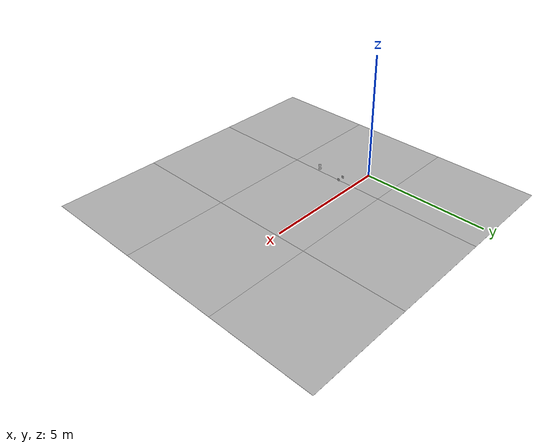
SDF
<sdf version='1.6'><world name='default'>
    <light name='sun_light' type='directional'>
      <pose frame=''>0 0 10 0 -0 0</pose>
      <diffuse>0.5 0.5 0.5 1</diffuse>
      <specular>0.1 0.1 0.1 1</specular>
      <direction>0.1 0.1 -0.9</direction>
      <attenuation>
        <range>20</range>
        <constant>0.5</constant>
        <linear>0.01</linear>
        <quadratic>0.001</quadratic>
      </attenuation>
      <cast_shadows>1</cast_shadows>
    </light>

    <model name='Tile/0-0'>
      <static>1</static>
      <link name='link'>
        <collision name='collision'>
          <geometry>
            <plane>
              <normal>0 0 1</normal>
              <size>4.096 4.096</size>
            </plane>
          </geometry>
          <surface>
            <friction>
              <ode>
                <mu>100</mu>
                <mu2>50</mu2>
              </ode>
              <torsional>
                <ode/>
              </torsional>
            </friction>
            <contact>
              <ode/>
            </contact>
            <bounce/>
          </surface>
          <max_contacts>10</max_contacts>
        </collision>
        <visual name='visual'>
          <cast_shadows>0</cast_shadows>
          <geometry>
            <plane>
              <normal>0 0 1</normal>
              <size>4.096 4.096</size>
            </plane>
          </geometry>
          <material>
            <script>
              <uri>file://materials/scripts</uri>
              <uri>file://materials/textures</uri>
              <name>Tile/be6dc0a821c95bc31620aecd96f3677c677a5320fa00c514214f92d96d260283</name>
            </script>
          </material>
        </visual>
        <self_collide>0</self_collide>
        <enable_wind>0</enable_wind>
        <kinematic>0</kinematic>
      </link>
      <pose frame=''>-1.0176854249492382 -4.924750183902104 0 0 -0 0</pose>
    </model>

    <model name='Tile/0-1'>
      <static>1</static>
      <link name='link'>
        <collision name='collision'>
          <geometry>
            <plane>
              <normal>0 0 1</normal>
              <size>4.096 4.096</size>
            </plane>
          </geometry>
          <surface>
            <friction>
              <ode>
                <mu>100</mu>
                <mu2>50</mu2>
              </ode>
              <torsional>
                <ode/>
              </torsional>
            </friction>
            <contact>
              <ode/>
            </contact>
            <bounce/>
          </surface>
          <max_contacts>10</max_contacts>
        </collision>
        <visual name='visual'>
          <cast_shadows>0</cast_shadows>
          <geometry>
            <plane>
              <normal>0 0 1</normal>
              <size>4.096 4.096</size>
            </plane>
          </geometry>
          <material>
            <script>
              <uri>file://materials/scripts</uri>
              <uri>file://materials/textures</uri>
              <name>Tile/fff816b9a3f4781e073f4641bb45676a35f76713a00fb26ff5c04b18a6f9a32e</name>
            </script>
          </material>
        </visual>
        <self_collide>0</self_collide>
        <enable_wind>0</enable_wind>
        <kinematic>0</kinematic>
      </link>
      <pose frame=''>-1.0176854249492382 -0.8287501839021036 0 0 -0 0</pose>
    </model>

    <model name='Tile/0-2'>
      <static>1</static>
      <link name='link'>
        <collision name='collision'>
          <geometry>
            <plane>
              <normal>0 0 1</normal>
              <size>4.096 4.096</size>
            </plane>
          </geometry>
          <surface>
            <friction>
              <ode>
                <mu>100</mu>
                <mu2>50</mu2>
              </ode>
              <torsional>
                <ode/>
              </torsional>
            </friction>
            <contact>
              <ode/>
            </contact>
            <bounce/>
          </surface>
          <max_contacts>10</max_contacts>
        </collision>
        <visual name='visual'>
          <cast_shadows>0</cast_shadows>
          <geometry>
            <plane>
              <normal>0 0 1</normal>
              <size>4.096 4.096</size>
            </plane>
          </geometry>
          <material>
            <script>
              <uri>file://materials/scripts</uri>
              <uri>file://materials/textures</uri>
              <name>Tile/5eab350b8220ac9944dbdfa4ac3288c7c17e24c3bf5df0dfcf6173d64dae00a1</name>
            </script>
          </material>
        </visual>
        <self_collide>0</self_collide>
        <enable_wind>0</enable_wind>
        <kinematic>0</kinematic>
      </link>
      <pose frame=''>-1.0176854249492382 3.2672498160978964 0 0 -0 0</pose>
    </model>

    <model name='Tile/1-0'>
      <static>1</static>
      <link name='link'>
        <collision name='collision'>
          <geometry>
            <plane>
              <normal>0 0 1</normal>
              <size>4.096 4.096</size>
            </plane>
          </geometry>
          <surface>
            <friction>
              <ode>
                <mu>100</mu>
                <mu2>50</mu2>
              </ode>
              <torsional>
                <ode/>
              </torsional>
            </friction>
            <contact>
              <ode/>
            </contact>
            <bounce/>
          </surface>
          <max_contacts>10</max_contacts>
        </collision>
        <visual name='visual'>
          <cast_shadows>0</cast_shadows>
          <geometry>
            <plane>
              <normal>0 0 1</normal>
              <size>4.096 4.096</size>
            </plane>
          </geometry>
          <material>
            <script>
              <uri>file://materials/scripts</uri>
              <uri>file://materials/textures</uri>
              <name>Tile/d1f8dc7bb2c23ad7effa0ec2445359d1d21ec617469079331b1877aadc51befb</name>
            </script>
          </material>
        </visual>
        <self_collide>0</self_collide>
        <enable_wind>0</enable_wind>
        <kinematic>0</kinematic>
      </link>
      <pose frame=''>3.078314575050762 -4.924750183902104 0 0 -0 0</pose>
    </model>

    <model name='Tile/1-1'>
      <static>1</static>
      <link name='link'>
        <collision name='collision'>
          <geometry>
            <plane>
              <normal>0 0 1</normal>
              <size>4.096 4.096</size>
            </plane>
          </geometry>
          <surface>
            <friction>
              <ode>
                <mu>100</mu>
                <mu2>50</mu2>
              </ode>
              <torsional>
                <ode/>
              </torsional>
            </friction>
            <contact>
              <ode/>
            </contact>
            <bounce/>
          </surface>
          <max_contacts>10</max_contacts>
        </collision>
        <visual name='visual'>
          <cast_shadows>0</cast_shadows>
          <geometry>
            <plane>
              <normal>0 0 1</normal>
              <size>4.096 4.096</size>
            </plane>
          </geometry>
          <material>
            <script>
              <uri>file://materials/scripts</uri>
              <uri>file://materials/textures</uri>
              <name>Tile/47f687dcbce892f3b75af2f36f665fa62023f284b6726d3470230a86d500e8c9</name>
            </script>
          </material>
        </visual>
        <self_collide>0</self_collide>
        <enable_wind>0</enable_wind>
        <kinematic>0</kinematic>
      </link>
      <pose frame=''>3.078314575050762 -0.8287501839021036 0 0 -0 0</pose>
    </model>

    <model name='Tile/1-2'>
      <static>1</static>
      <link name='link'>
        <collision name='collision'>
          <geometry>
            <plane>
              <normal>0 0 1</normal>
              <size>4.096 4.096</size>
            </plane>
          </geometry>
          <surface>
            <friction>
              <ode>
                <mu>100</mu>
                <mu2>50</mu2>
              </ode>
              <torsional>
                <ode/>
              </torsional>
            </friction>
            <contact>
              <ode/>
            </contact>
            <bounce/>
          </surface>
          <max_contacts>10</max_contacts>
        </collision>
        <visual name='visual'>
          <cast_shadows>0</cast_shadows>
          <geometry>
            <plane>
              <normal>0 0 1</normal>
              <size>4.096 4.096</size>
            </plane>
          </geometry>
          <material>
            <script>
              <uri>file://materials/scripts</uri>
              <uri>file://materials/textures</uri>
              <name>Tile/5eab350b8220ac9944dbdfa4ac3288c7c17e24c3bf5df0dfcf6173d64dae00a1</name>
            </script>
          </material>
        </visual>
        <self_collide>0</self_collide>
        <enable_wind>0</enable_wind>
        <kinematic>0</kinematic>
      </link>
      <pose frame=''>3.078314575050762 3.2672498160978964 0 0 -0 0</pose>
    </model>

    <model name='Tile/2-0'>
      <static>1</static>
      <link name='link'>
        <collision name='collision'>
          <geometry>
            <plane>
              <normal>0 0 1</normal>
              <size>4.096 4.096</size>
            </plane>
          </geometry>
          <surface>
            <friction>
              <ode>
                <mu>100</mu>
                <mu2>50</mu2>
              </ode>
              <torsional>
                <ode/>
              </torsional>
            </friction>
            <contact>
              <ode/>
            </contact>
            <bounce/>
          </surface>
          <max_contacts>10</max_contacts>
        </collision>
        <visual name='visual'>
          <cast_shadows>0</cast_shadows>
          <geometry>
            <plane>
              <normal>0 0 1</normal>
              <size>4.096 4.096</size>
            </plane>
          </geometry>
          <material>
            <script>
              <uri>file://materials/scripts</uri>
              <uri>file://materials/textures</uri>
              <name>Tile/5eab350b8220ac9944dbdfa4ac3288c7c17e24c3bf5df0dfcf6173d64dae00a1</name>
            </script>
          </material>
        </visual>
        <self_collide>0</self_collide>
        <enable_wind>0</enable_wind>
        <kinematic>0</kinematic>
      </link>
      <pose frame=''>7.1743145750507615 -4.924750183902104 0 0 -0 0</pose>
    </model>

    <model name='Tile/2-1'>
      <static>1</static>
      <link name='link'>
        <collision name='collision'>
          <geometry>
            <plane>
              <normal>0 0 1</normal>
              <size>4.096 4.096</size>
            </plane>
          </geometry>
          <surface>
            <friction>
              <ode>
                <mu>100</mu>
                <mu2>50</mu2>
              </ode>
              <torsional>
                <ode/>
              </torsional>
            </friction>
            <contact>
              <ode/>
            </contact>
            <bounce/>
          </surface>
          <max_contacts>10</max_contacts>
        </collision>
        <visual name='visual'>
          <cast_shadows>0</cast_shadows>
          <geometry>
            <plane>
              <normal>0 0 1</normal>
              <size>4.096 4.096</size>
            </plane>
          </geometry>
          <material>
            <script>
              <uri>file://materials/scripts</uri>
              <uri>file://materials/textures</uri>
              <name>Tile/5eab350b8220ac9944dbdfa4ac3288c7c17e24c3bf5df0dfcf6173d64dae00a1</name>
            </script>
          </material>
        </visual>
        <self_collide>0</self_collide>
        <enable_wind>0</enable_wind>
        <kinematic>0</kinematic>
      </link>
      <pose frame=''>7.1743145750507615 -0.8287501839021036 0 0 -0 0</pose>
    </model>

    <model name='Tile/2-2'>
      <static>1</static>
      <link name='link'>
        <collision name='collision'>
          <geometry>
            <plane>
              <normal>0 0 1</normal>
              <size>4.096 4.096</size>
            </plane>
          </geometry>
          <surface>
            <friction>
              <ode>
                <mu>100</mu>
                <mu2>50</mu2>
              </ode>
              <torsional>
                <ode/>
              </torsional>
            </friction>
            <contact>
              <ode/>
            </contact>
            <bounce/>
          </surface>
          <max_contacts>10</max_contacts>
        </collision>
        <visual name='visual'>
          <cast_shadows>0</cast_shadows>
          <geometry>
            <plane>
              <normal>0 0 1</normal>
              <size>4.096 4.096</size>
            </plane>
          </geometry>
          <material>
            <script>
              <uri>file://materials/scripts</uri>
              <uri>file://materials/textures</uri>
              <name>Tile/5eab350b8220ac9944dbdfa4ac3288c7c17e24c3bf5df0dfcf6173d64dae00a1</name>
            </script>
          </material>
        </visual>
        <self_collide>0</self_collide>
        <enable_wind>0</enable_wind>
        <kinematic>0</kinematic>
      </link>
      <pose frame=''>7.1743145750507615 3.2672498160978964 0 0 -0 0</pose>
    </model>

    <model name='Sign/-13'>
      <static>1</static>
      <link name='link'>
        <visual name='visual'>
          <cast_shadows>0</cast_shadows>
          <geometry>
            <plane>
              <normal>0 0 1</normal>
              <size>0.1 0.1</size>
            </plane>
          </geometry>
          <material>
            <script>
              <uri>file://materials/scripts</uri>
              <uri>file://materials/textures</uri>
              <name>Sign/stvo-209-20</name>
            </script>
          </material>
        </visual>
        <self_collide>0</self_collide>
        <enable_wind>0</enable_wind>
        <kinematic>0</kinematic>
      </link>
      <pose frame=''>1.25 -0.49999999999999994 0.2 1.5707963267948966 0 4.71238898038469</pose>
    </model>

    <model name='Sign/-14'>
      <static>1</static>
      <link name='link'>
        <visual name='visual'>
          <cast_shadows>0</cast_shadows>
          <geometry>
            <plane>
              <normal>0 0 1</normal>
              <size>0.1 0.1</size>
            </plane>
          </geometry>
          <material>
            <script>
              <uri>file://materials/scripts</uri>
              <uri>file://materials/textures</uri>
              <name>Sign/stvo-206</name>
            </script>
          </material>
        </visual>
        <self_collide>0</self_collide>
        <enable_wind>0</enable_wind>
        <kinematic>0</kinematic>
      </link>
      <pose frame=''>0.9999999999999999 -0.49999999999999994 0.2 1.5707963267948966 0 4.71238898038469</pose>
    </model>

    <model name='Sign/-27'>
      <static>1</static>
      <link name='link'>
        <visual name='visual'>
          <cast_shadows>0</cast_shadows>
          <geometry>
            <plane>
              <normal>0 0 1</normal>
              <size>0.1 0.1</size>
            </plane>
          </geometry>
          <material>
            <script>
              <uri>file://materials/scripts</uri>
              <uri>file://materials/textures</uri>
              <name>Sign/stvo-209-10</name>
            </script>
          </material>
        </visual>
        <self_collide>0</self_collide>
        <enable_wind>0</enable_wind>
        <kinematic>0</kinematic>
      </link>
      <pose frame=''>0.9596194077712557 -1.7131727983645297 0.2 1.5707963267948966 0 2.356194490192345</pose>
    </model>

    <model name='Sign/-28'>
      <static>1</static>
      <link name='link'>
        <visual name='visual'>
          <cast_shadows>0</cast_shadows>
          <geometry>
            <plane>
              <normal>0 0 1</normal>
              <size>0.1 0.1</size>
            </plane>
          </geometry>
          <material>
            <script>
              <uri>file://materials/scripts</uri>
              <uri>file://materials/textures</uri>
              <name>Sign/stvo-205</name>
            </script>
          </material>
        </visual>
        <self_collide>0</self_collide>
        <enable_wind>0</enable_wind>
        <kinematic>0</kinematic>
      </link>
      <pose frame=''>1.1363961030678924 -1.5363961030678928 0.2 1.5707963267948966 0 2.356194490192345</pose>
    </model>
    </world></sdf>
